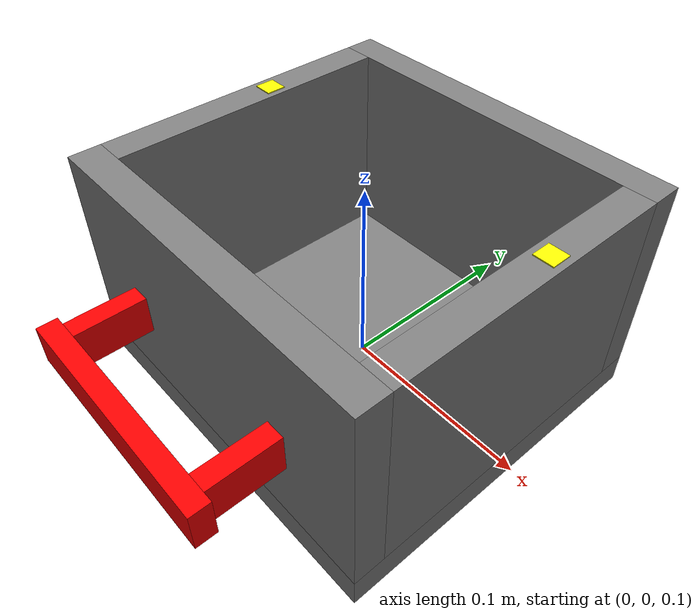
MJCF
<mujoco model="picked_box">
    <worldbody>
        <body name="picked_box" pos="0.0 0.0 0.0" quat="1 0 0 0">
            <geom name="picked_handle" pos="0 -0.13 0.15" quat="1 0 0 0" rgba="1 0 0 1.0" size="0.06 0.005 0.01" friction="3 0.9 0.5" type="box" mass="0.01" priority="1"/>
            <geom name="picked_handle1" pos="0.05 -0.095 0.15" quat="1 1 0 0" rgba="1 0 0 1.0" size="0.005 0.01 0.03" friction="3 0.9 0.5" type="box" mass="0.005" priority="1"/>
            <geom name="picked_handle2" pos="-0.05 -0.095 0.15" quat="1 1 0 0" rgba="1 0 0 1.0" size="0.005 0.01 0.03" friction="3 0.9 0.5" type="box" mass="0.005" priority="1"/>
            <geom name="picked_box1" pos="0 -0.082 0.158" size="0.095 0.008 0.052" type="box" mass="0.1" />
            <geom name="picked_box2" pos="0 0.082 0.158" size="0.095 0.008 0.052" type="box" mass="0.1" />
            <geom name="picked_box3" pos="-0.087 0 0.158" size="0.008 0.074 0.052" type="box" mass="0.05" />
            <geom name="picked_box4" pos="0.087 0 0.158" size="0.008 0.074 0.052" type="box" mass="0.05" />
            <geom name="picked_box5" pos="0 0 0.098" size="0.095 0.09 0.008" type="box" mass="0.1" />
            <geom  pos="0.087 0.015 0.21" size="0.005 0.005 0.0005" rgba="1 1 0 1.0" type="box" mass="0.0001" />
            <geom  pos="-0.087 0.015 0.21" size="0.005 0.005 0.0005" rgba="1 1 0 1.0" type="box" mass="0.0001" />
            <joint name="picked_box_joint" type="free"/>

        </body>
    </worldbody>
</mujoco>
